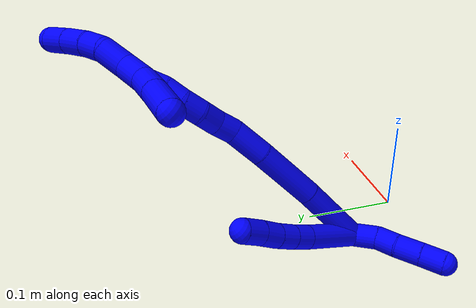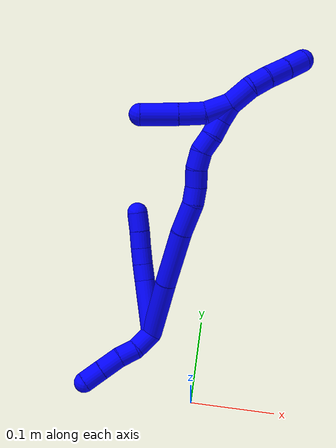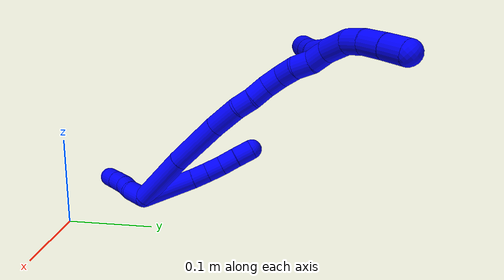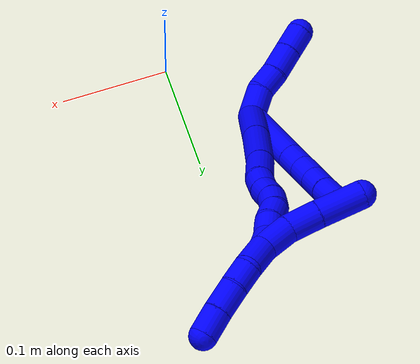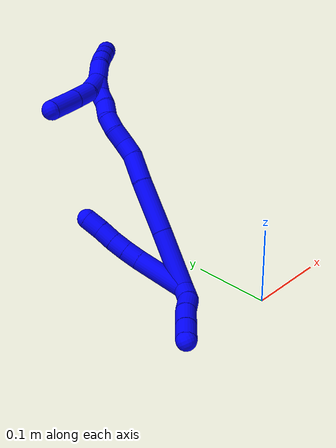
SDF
<sdf version="1.7">
 <world name="default">
  <model name="1">
   <static>0</static>
   <link name="1">
    <collision name="collision-cylinder-e_1_2_8">
     <pose>-0.018142 0.006258 0.026969 -0.228025 -0.580071 0.068324</pose>
     <geometry><cylinder><radius>0.0125</radius><length>0.0662</length></cylinder></geometry>
     <surface>
      <friction><ode><mu>1.16</mu><mu2>1.16</mu2><slip1>0</slip1><slip2>0</slip2></ode></friction>
      <contact><ode><kp>1e+06</kp><kd>1</kd><max_vel>0</max_vel><min_depth>0.001</min_depth></ode></contact>
     </surface>
    </collision>
    <visual name="visual-cylinder-e_1_2_8">
     <pose>-0.018142 0.006258 0.026969 -0.228025 -0.580071 0.068324</pose>
     <geometry><cylinder><radius>0.0125</radius><length>0.0662</length></cylinder></geometry>
     <material><ambient>0 0 1 1</ambient></material>
    </visual>
    <collision name="collision-cylinder-e_2_8_9">
     <pose>-0.041552 0.013997 0.062489 -0.171379 -0.545657 0.048061</pose>
     <geometry><cylinder><radius>0.0125</radius><length>0.020306</length></cylinder></geometry>
     <surface>
      <friction><ode><mu>1.16</mu><mu2>1.16</mu2><slip1>0</slip1><slip2>0</slip2></ode></friction>
      <contact><ode><kp>1e+06</kp><kd>1</kd><max_vel>0</max_vel><min_depth>0.001</min_depth></ode></contact>
     </surface>
    </collision>
    <visual name="visual-cylinder-e_2_8_9">
     <pose>-0.041552 0.013997 0.062489 -0.171379 -0.545657 0.048061</pose>
     <geometry><cylinder><radius>0.0125</radius><length>0.020306</length></cylinder></geometry>
     <material><ambient>0 0 1 1</ambient></material>
    </visual>
    <collision name="collision-cylinder-e_3_9_10">
     <pose>-0.051677 0.01679 0.079745 -0.14973 -0.504053 0.038623</pose>
     <geometry><cylinder><radius>0.0125</radius><length>0.020106</length></cylinder></geometry>
     <surface>
      <friction><ode><mu>1.16</mu><mu2>1.16</mu2><slip1>0</slip1><slip2>0</slip2></ode></friction>
      <contact><ode><kp>1e+06</kp><kd>1</kd><max_vel>0</max_vel><min_depth>0.001</min_depth></ode></contact>
     </surface>
    </collision>
    <visual name="visual-cylinder-e_3_9_10">
     <pose>-0.051677 0.01679 0.079745 -0.14973 -0.504053 0.038623</pose>
     <geometry><cylinder><radius>0.0125</radius><length>0.020106</length></cylinder></geometry>
     <material><ambient>0 0 1 1</ambient></material>
    </visual>
    <collision name="collision-cylinder-e_4_10_11">
     <pose>-0.060984 0.019035 0.097905 -0.098196 -0.438135 0.021879</pose>
     <geometry><cylinder><radius>0.0125</radius><length>0.020985</length></cylinder></geometry>
     <surface>
      <friction><ode><mu>1.16</mu><mu2>1.16</mu2><slip1>0</slip1><slip2>0</slip2></ode></friction>
      <contact><ode><kp>1e+06</kp><kd>1</kd><max_vel>0</max_vel><min_depth>0.001</min_depth></ode></contact>
     </surface>
    </collision>
    <visual name="visual-cylinder-e_4_10_11">
     <pose>-0.060984 0.019035 0.097905 -0.098196 -0.438135 0.021879</pose>
     <geometry><cylinder><radius>0.0125</radius><length>0.020985</length></cylinder></geometry>
     <material><ambient>0 0 1 1</ambient></material>
    </visual>
    <collision name="collision-cylinder-e_5_11_6">
     <pose>-0.070785 0.020998 0.117148 -0.10502 -0.497927 0.026723</pose>
     <geometry><cylinder><radius>0.0125</radius><length>0.022403</length></cylinder></geometry>
     <surface>
      <friction><ode><mu>1.16</mu><mu2>1.16</mu2><slip1>0</slip1><slip2>0</slip2></ode></friction>
      <contact><ode><kp>1e+06</kp><kd>1</kd><max_vel>0</max_vel><min_depth>0.001</min_depth></ode></contact>
     </surface>
    </collision>
    <visual name="visual-cylinder-e_5_11_6">
     <pose>-0.070785 0.020998 0.117148 -0.10502 -0.497927 0.026723</pose>
     <geometry><cylinder><radius>0.0125</radius><length>0.022403</length></cylinder></geometry>
     <material><ambient>0 0 1 1</ambient></material>
    </visual>
    <collision name="collision-cylinder-e_1_2_12">
     <pose>-0.00156 -0.011194 -0.007921 2.18661 -0.113242 -0.218222</pose>
     <geometry><cylinder><radius>0.0125</radius><length>0.027604</length></cylinder></geometry>
     <surface>
      <friction><ode><mu>1.16</mu><mu2>1.16</mu2><slip1>0</slip1><slip2>0</slip2></ode></friction>
      <contact><ode><kp>1e+06</kp><kd>1</kd><max_vel>0</max_vel><min_depth>0.001</min_depth></ode></contact>
     </surface>
    </collision>
    <visual name="visual-cylinder-e_1_2_12">
     <pose>-0.00156 -0.011194 -0.007921 2.18661 -0.113242 -0.218222</pose>
     <geometry><cylinder><radius>0.0125</radius><length>0.027604</length></cylinder></geometry>
     <material><ambient>0 0 1 1</ambient></material>
    </visual>
    <collision name="collision-cylinder-e_2_12_13">
     <pose>-0.007916 -0.030567 -0.021464 2.17294 -0.450243 -0.821072</pose>
     <geometry><cylinder><radius>0.0125</radius><length>0.022045</length></cylinder></geometry>
     <surface>
      <friction><ode><mu>1.16</mu><mu2>1.16</mu2><slip1>0</slip1><slip2>0</slip2></ode></friction>
      <contact><ode><kp>1e+06</kp><kd>1</kd><max_vel>0</max_vel><min_depth>0.001</min_depth></ode></contact>
     </surface>
    </collision>
    <visual name="visual-cylinder-e_2_12_13">
     <pose>-0.007916 -0.030567 -0.021464 2.17294 -0.450243 -0.821072</pose>
     <geometry><cylinder><radius>0.0125</radius><length>0.022045</length></cylinder></geometry>
     <material><ambient>0 0 1 1</ambient></material>
    </visual>
    <collision name="collision-cylinder-e_3_13_14">
     <pose>-0.01693 -0.048303 -0.034982 2.26137 -0.327861 -0.675594</pose>
     <geometry><cylinder><radius>0.0125</radius><length>0.02619</length></cylinder></geometry>
     <surface>
      <friction><ode><mu>1.16</mu><mu2>1.16</mu2><slip1>0</slip1><slip2>0</slip2></ode></friction>
      <contact><ode><kp>1e+06</kp><kd>1</kd><max_vel>0</max_vel><min_depth>0.001</min_depth></ode></contact>
     </surface>
    </collision>
    <visual name="visual-cylinder-e_3_13_14">
     <pose>-0.01693 -0.048303 -0.034982 2.26137 -0.327861 -0.675594</pose>
     <geometry><cylinder><radius>0.0125</radius><length>0.02619</length></cylinder></geometry>
     <material><ambient>0 0 1 1</ambient></material>
    </visual>
    <collision name="collision-cylinder-e_4_14_5">
     <pose>-0.025086 -0.066499 -0.050347 2.28365 -0.332165 -0.702585</pose>
     <geometry><cylinder><radius>0.0125</radius><length>0.024161</length></cylinder></geometry>
     <surface>
      <friction><ode><mu>1.16</mu><mu2>1.16</mu2><slip1>0</slip1><slip2>0</slip2></ode></friction>
      <contact><ode><kp>1e+06</kp><kd>1</kd><max_vel>0</max_vel><min_depth>0.001</min_depth></ode></contact>
     </surface>
    </collision>
    <visual name="visual-cylinder-e_4_14_5">
     <pose>-0.025086 -0.066499 -0.050347 2.28365 -0.332165 -0.702585</pose>
     <geometry><cylinder><radius>0.0125</radius><length>0.024161</length></cylinder></geometry>
     <material><ambient>0 0 1 1</ambient></material>
    </visual>
    <collision name="collision-cylinder-e_1_2_15">
     <pose>0.000826 -0.000609 0.037196 0.016366 0.022189 0.000182</pose>
     <geometry><cylinder><radius>0.0125</radius><length>0.074421</length></cylinder></geometry>
     <surface>
      <friction><ode><mu>1.16</mu><mu2>1.16</mu2><slip1>0</slip1><slip2>0</slip2></ode></friction>
      <contact><ode><kp>1e+06</kp><kd>1</kd><max_vel>0</max_vel><min_depth>0.001</min_depth></ode></contact>
     </surface>
    </collision>
    <visual name="visual-cylinder-e_1_2_15">
     <pose>0.000826 -0.000609 0.037196 0.016366 0.022189 0.000182</pose>
     <geometry><cylinder><radius>0.0125</radius><length>0.074421</length></cylinder></geometry>
     <material><ambient>0 0 1 1</ambient></material>
    </visual>
    <collision name="collision-cylinder-e_2_15_16">
     <pose>0.002172 0.000132 0.108194 -0.039903 0.015393 -0.000307</pose>
     <geometry><cylinder><radius>0.0125</radius><length>0.067665</length></cylinder></geometry>
     <surface>
      <friction><ode><mu>1.16</mu><mu2>1.16</mu2><slip1>0</slip1><slip2>0</slip2></ode></friction>
      <contact><ode><kp>1e+06</kp><kd>1</kd><max_vel>0</max_vel><min_depth>0.001</min_depth></ode></contact>
     </surface>
    </collision>
    <visual name="visual-cylinder-e_2_15_16">
     <pose>0.002172 0.000132 0.108194 -0.039903 0.015393 -0.000307</pose>
     <geometry><cylinder><radius>0.0125</radius><length>0.067665</length></cylinder></geometry>
     <material><ambient>0 0 1 1</ambient></material>
    </visual>
    <collision name="collision-cylinder-e_3_16_17">
     <pose>0.003862 0.003722 0.160255 -0.122072 0.063483 -0.003881</pose>
     <geometry><cylinder><radius>0.0125</radius><length>0.036868</length></cylinder></geometry>
     <surface>
      <friction><ode><mu>1.16</mu><mu2>1.16</mu2><slip1>0</slip1><slip2>0</slip2></ode></friction>
      <contact><ode><kp>1e+06</kp><kd>1</kd><max_vel>0</max_vel><min_depth>0.001</min_depth></ode></contact>
     </surface>
    </collision>
    <visual name="visual-cylinder-e_3_16_17">
     <pose>0.003862 0.003722 0.160255 -0.122072 0.063483 -0.003881</pose>
     <geometry><cylinder><radius>0.0125</radius><length>0.036868</length></cylinder></geometry>
     <material><ambient>0 0 1 1</ambient></material>
    </visual>
    <collision name="collision-cylinder-e_4_17_18">
     <pose>0.003189 0.00738 0.188351 -0.143176 -0.183322 0.013183</pose>
     <geometry><cylinder><radius>0.0125</radius><length>0.020213</length></cylinder></geometry>
     <surface>
      <friction><ode><mu>1.16</mu><mu2>1.16</mu2><slip1>0</slip1><slip2>0</slip2></ode></friction>
      <contact><ode><kp>1e+06</kp><kd>1</kd><max_vel>0</max_vel><min_depth>0.001</min_depth></ode></contact>
     </surface>
    </collision>
    <visual name="visual-cylinder-e_4_17_18">
     <pose>0.003189 0.00738 0.188351 -0.143176 -0.183322 0.013183</pose>
     <geometry><cylinder><radius>0.0125</radius><length>0.020213</length></cylinder></geometry>
     <material><ambient>0 0 1 1</ambient></material>
    </visual>
    <collision name="collision-cylinder-e_5_18_19">
     <pose>-0.001168 0.008535 0.208077 0.026537 -0.24891 -0.00332</pose>
     <geometry><cylinder><radius>0.0125</radius><length>0.020419</length></cylinder></geometry>
     <surface>
      <friction><ode><mu>1.16</mu><mu2>1.16</mu2><slip1>0</slip1><slip2>0</slip2></ode></friction>
      <contact><ode><kp>1e+06</kp><kd>1</kd><max_vel>0</max_vel><min_depth>0.001</min_depth></ode></contact>
     </surface>
    </collision>
    <visual name="visual-cylinder-e_5_18_19">
     <pose>-0.001168 0.008535 0.208077 0.026537 -0.24891 -0.00332</pose>
     <geometry><cylinder><radius>0.0125</radius><length>0.020419</length></cylinder></geometry>
     <material><ambient>0 0 1 1</ambient></material>
    </visual>
    <collision name="collision-cylinder-e_6_19_20">
     <pose>-0.004482 0.00976 0.227987 -0.147457 -0.078727 0.005818</pose>
     <geometry><cylinder><radius>0.0125</radius><length>0.02032</length></cylinder></geometry>
     <surface>
      <friction><ode><mu>1.16</mu><mu2>1.16</mu2><slip1>0</slip1><slip2>0</slip2></ode></friction>
      <contact><ode><kp>1e+06</kp><kd>1</kd><max_vel>0</max_vel><min_depth>0.001</min_depth></ode></contact>
     </surface>
    </collision>
    <visual name="visual-cylinder-e_6_19_20">
     <pose>-0.004482 0.00976 0.227987 -0.147457 -0.078727 0.005818</pose>
     <geometry><cylinder><radius>0.0125</radius><length>0.02032</length></cylinder></geometry>
     <material><ambient>0 0 1 1</ambient></material>
    </visual>
    <collision name="collision-cylinder-e_7_20_21">
     <pose>-0.003102 0.014414 0.247269 -0.329263 0.219065 -0.036537</pose>
     <geometry><cylinder><radius>0.0125</radius><length>0.020059</length></cylinder></geometry>
     <surface>
      <friction><ode><mu>1.16</mu><mu2>1.16</mu2><slip1>0</slip1><slip2>0</slip2></ode></friction>
      <contact><ode><kp>1e+06</kp><kd>1</kd><max_vel>0</max_vel><min_depth>0.001</min_depth></ode></contact>
     </surface>
    </collision>
    <visual name="visual-cylinder-e_7_20_21">
     <pose>-0.003102 0.014414 0.247269 -0.329263 0.219065 -0.036537</pose>
     <geometry><cylinder><radius>0.0125</radius><length>0.020059</length></cylinder></geometry>
     <material><ambient>0 0 1 1</ambient></material>
    </visual>
    <collision name="collision-cylinder-e_8_21_22">
     <pose>-0.000806 0.021914 0.265561 -0.447644 0.011615 -0.002644</pose>
     <geometry><cylinder><radius>0.0125</radius><length>0.020029</length></cylinder></geometry>
     <surface>
      <friction><ode><mu>1.16</mu><mu2>1.16</mu2><slip1>0</slip1><slip2>0</slip2></ode></friction>
      <contact><ode><kp>1e+06</kp><kd>1</kd><max_vel>0</max_vel><min_depth>0.001</min_depth></ode></contact>
     </surface>
    </collision>
    <visual name="visual-cylinder-e_8_21_22">
     <pose>-0.000806 0.021914 0.265561 -0.447644 0.011615 -0.002644</pose>
     <geometry><cylinder><radius>0.0125</radius><length>0.020029</length></cylinder></geometry>
     <material><ambient>0 0 1 1</ambient></material>
    </visual>
    <collision name="collision-cylinder-e_9_22_1">
     <pose>0.001317 0.028485 0.284129 -0.230239 0.201949 -0.02343</pose>
     <geometry><cylinder><radius>0.0125</radius><length>0.020007</length></cylinder></geometry>
     <surface>
      <friction><ode><mu>1.16</mu><mu2>1.16</mu2><slip1>0</slip1><slip2>0</slip2></ode></friction>
      <contact><ode><kp>1e+06</kp><kd>1</kd><max_vel>0</max_vel><min_depth>0.001</min_depth></ode></contact>
     </surface>
    </collision>
    <visual name="visual-cylinder-e_9_22_1">
     <pose>0.001317 0.028485 0.284129 -0.230239 0.201949 -0.02343</pose>
     <geometry><cylinder><radius>0.0125</radius><length>0.020007</length></cylinder></geometry>
     <material><ambient>0 0 1 1</ambient></material>
    </visual>
    <collision name="collision-cylinder-e_1_1_23">
     <pose>-0.005497 0.022224 0.286135 2.2963 -0.660336 -1.30229</pose>
     <geometry><cylinder><radius>0.0125</radius><length>0.02876</length></cylinder></geometry>
     <surface>
      <friction><ode><mu>1.16</mu><mu2>1.16</mu2><slip1>0</slip1><slip2>0</slip2></ode></friction>
      <contact><ode><kp>1e+06</kp><kd>1</kd><max_vel>0</max_vel><min_depth>0.001</min_depth></ode></contact>
     </surface>
    </collision>
    <visual name="visual-cylinder-e_1_1_23">
     <pose>-0.005497 0.022224 0.286135 2.2963 -0.660336 -1.30229</pose>
     <geometry><cylinder><radius>0.0125</radius><length>0.02876</length></cylinder></geometry>
     <material><ambient>0 0 1 1</ambient></material>
    </visual>
    <collision name="collision-cylinder-e_2_23_24">
     <pose>-0.025481 0.005282 0.274555 2.0175 -0.872844 -1.27488</pose>
     <geometry><cylinder><radius>0.0125</radius><length>0.029141</length></cylinder></geometry>
     <surface>
      <friction><ode><mu>1.16</mu><mu2>1.16</mu2><slip1>0</slip1><slip2>0</slip2></ode></friction>
      <contact><ode><kp>1e+06</kp><kd>1</kd><max_vel>0</max_vel><min_depth>0.001</min_depth></ode></contact>
     </surface>
    </collision>
    <visual name="visual-cylinder-e_2_23_24">
     <pose>-0.025481 0.005282 0.274555 2.0175 -0.872844 -1.27488</pose>
     <geometry><cylinder><radius>0.0125</radius><length>0.029141</length></cylinder></geometry>
     <material><ambient>0 0 1 1</ambient></material>
    </visual>
    <collision name="collision-cylinder-e_3_24_4">
     <pose>-0.053212 -0.015073 0.265338 1.98043 -0.906057 -1.27681</pose>
     <geometry><cylinder><radius>0.0125</radius><length>0.042099</length></cylinder></geometry>
     <surface>
      <friction><ode><mu>1.16</mu><mu2>1.16</mu2><slip1>0</slip1><slip2>0</slip2></ode></friction>
      <contact><ode><kp>1e+06</kp><kd>1</kd><max_vel>0</max_vel><min_depth>0.001</min_depth></ode></contact>
     </surface>
    </collision>
    <visual name="visual-cylinder-e_3_24_4">
     <pose>-0.053212 -0.015073 0.265338 1.98043 -0.906057 -1.27681</pose>
     <geometry><cylinder><radius>0.0125</radius><length>0.042099</length></cylinder></geometry>
     <material><ambient>0 0 1 1</ambient></material>
    </visual>
    <collision name="collision-cylinder-e_1_1_25">
     <pose>0.009212 0.037133 0.305179 -0.508322 0.420344 -0.11072</pose>
     <geometry><cylinder><radius>0.0125</radius><length>0.028858</length></cylinder></geometry>
     <surface>
      <friction><ode><mu>1.16</mu><mu2>1.16</mu2><slip1>0</slip1><slip2>0</slip2></ode></friction>
      <contact><ode><kp>1e+06</kp><kd>1</kd><max_vel>0</max_vel><min_depth>0.001</min_depth></ode></contact>
     </surface>
    </collision>
    <visual name="visual-cylinder-e_1_1_25">
     <pose>0.009212 0.037133 0.305179 -0.508322 0.420344 -0.11072</pose>
     <geometry><cylinder><radius>0.0125</radius><length>0.028858</length></cylinder></geometry>
     <material><ambient>0 0 1 1</ambient></material>
    </visual>
    <collision name="collision-cylinder-e_2_25_26">
     <pose>0.01921 0.051167 0.322945 -0.883254 0.394838 -0.18857</pose>
     <geometry><cylinder><radius>0.0125</radius><length>0.02137</length></cylinder></geometry>
     <surface>
      <friction><ode><mu>1.16</mu><mu2>1.16</mu2><slip1>0</slip1><slip2>0</slip2></ode></friction>
      <contact><ode><kp>1e+06</kp><kd>1</kd><max_vel>0</max_vel><min_depth>0.001</min_depth></ode></contact>
     </surface>
    </collision>
    <visual name="visual-cylinder-e_2_25_26">
     <pose>0.01921 0.051167 0.322945 -0.883254 0.394838 -0.18857</pose>
     <geometry><cylinder><radius>0.0125</radius><length>0.02137</length></cylinder></geometry>
     <material><ambient>0 0 1 1</ambient></material>
    </visual>
    <collision name="collision-cylinder-e_3_26_27">
     <pose>0.027848 0.069025 0.335266 -1.03616 0.363694 -0.208864</pose>
     <geometry><cylinder><radius>0.0125</radius><length>0.025457</length></cylinder></geometry>
     <surface>
      <friction><ode><mu>1.16</mu><mu2>1.16</mu2><slip1>0</slip1><slip2>0</slip2></ode></friction>
      <contact><ode><kp>1e+06</kp><kd>1</kd><max_vel>0</max_vel><min_depth>0.001</min_depth></ode></contact>
     </surface>
    </collision>
    <visual name="visual-cylinder-e_3_26_27">
     <pose>0.027848 0.069025 0.335266 -1.03616 0.363694 -0.208864</pose>
     <geometry><cylinder><radius>0.0125</radius><length>0.025457</length></cylinder></geometry>
     <material><ambient>0 0 1 1</ambient></material>
    </visual>
    <collision name="collision-cylinder-e_4_27_3">
     <pose>0.03612 0.089344 0.346994 -1.05883 0.313077 -0.184181</pose>
     <geometry><cylinder><radius>0.0125</radius><length>0.024315</length></cylinder></geometry>
     <surface>
      <friction><ode><mu>1.16</mu><mu2>1.16</mu2><slip1>0</slip1><slip2>0</slip2></ode></friction>
      <contact><ode><kp>1e+06</kp><kd>1</kd><max_vel>0</max_vel><min_depth>0.001</min_depth></ode></contact>
     </surface>
    </collision>
    <visual name="visual-cylinder-e_4_27_3">
     <pose>0.03612 0.089344 0.346994 -1.05883 0.313077 -0.184181</pose>
     <geometry><cylinder><radius>0.0125</radius><length>0.024315</length></cylinder></geometry>
     <material><ambient>0 0 1 1</ambient></material>
    </visual>
    <collision name="collision-sphere-3">
     <pose>0.039864 0.099427 0.35266 0 -0 0</pose>
     <geometry><sphere><radius>0.0125</radius></sphere></geometry>
     <surface>
      <friction><ode><mu>1.16</mu><mu2>1.16</mu2><slip1>0</slip1><slip2>0</slip2></ode></friction>
      <contact><ode><kp>1e+06</kp><kd>1</kd><max_vel>0</max_vel><min_depth>0.001</min_depth></ode></contact>
     </surface>
    </collision>
    <visual name="visual-sphere-3">
     <pose>0.039864 0.099427 0.35266 0 -0 0</pose>
     <geometry><sphere><radius>0.0125</radius></sphere></geometry>
     <material><ambient>0 0 1 1</ambient></material>
    </visual>
    <collision name="collision-sphere-27">
     <pose>0.032376 0.07926 0.341327 0 -0 0</pose>
     <geometry><sphere><radius>0.0125</radius></sphere></geometry>
     <surface>
      <friction><ode><mu>1.16</mu><mu2>1.16</mu2><slip1>0</slip1><slip2>0</slip2></ode></friction>
      <contact><ode><kp>1e+06</kp><kd>1</kd><max_vel>0</max_vel><min_depth>0.001</min_depth></ode></contact>
     </surface>
    </collision>
    <visual name="visual-sphere-27">
     <pose>0.032376 0.07926 0.341327 0 -0 0</pose>
     <geometry><sphere><radius>0.0125</radius></sphere></geometry>
     <material><ambient>0 0 1 1</ambient></material>
    </visual>
    <collision name="collision-sphere-26">
     <pose>0.02332 0.058789 0.329205 0 -0 0</pose>
     <geometry><sphere><radius>0.0125</radius></sphere></geometry>
     <surface>
      <friction><ode><mu>1.16</mu><mu2>1.16</mu2><slip1>0</slip1><slip2>0</slip2></ode></friction>
      <contact><ode><kp>1e+06</kp><kd>1</kd><max_vel>0</max_vel><min_depth>0.001</min_depth></ode></contact>
     </surface>
    </collision>
    <visual name="visual-sphere-26">
     <pose>0.02332 0.058789 0.329205 0 -0 0</pose>
     <geometry><sphere><radius>0.0125</radius></sphere></geometry>
     <material><ambient>0 0 1 1</ambient></material>
    </visual>
    <collision name="collision-sphere-25">
     <pose>0.0151 0.043544 0.316686 0 -0 0</pose>
     <geometry><sphere><radius>0.0125</radius></sphere></geometry>
     <surface>
      <friction><ode><mu>1.16</mu><mu2>1.16</mu2><slip1>0</slip1><slip2>0</slip2></ode></friction>
      <contact><ode><kp>1e+06</kp><kd>1</kd><max_vel>0</max_vel><min_depth>0.001</min_depth></ode></contact>
     </surface>
    </collision>
    <visual name="visual-sphere-25">
     <pose>0.0151 0.043544 0.316686 0 -0 0</pose>
     <geometry><sphere><radius>0.0125</radius></sphere></geometry>
     <material><ambient>0 0 1 1</ambient></material>
    </visual>
    <collision name="collision-sphere-4">
     <pose>-0.069779 -0.026983 0.260167 0 -0 0</pose>
     <geometry><sphere><radius>0.0125</radius></sphere></geometry>
     <surface>
      <friction><ode><mu>1.16</mu><mu2>1.16</mu2><slip1>0</slip1><slip2>0</slip2></ode></friction>
      <contact><ode><kp>1e+06</kp><kd>1</kd><max_vel>0</max_vel><min_depth>0.001</min_depth></ode></contact>
     </surface>
    </collision>
    <visual name="visual-sphere-4">
     <pose>-0.069779 -0.026983 0.260167 0 -0 0</pose>
     <geometry><sphere><radius>0.0125</radius></sphere></geometry>
     <material><ambient>0 0 1 1</ambient></material>
    </visual>
    <collision name="collision-sphere-24">
     <pose>-0.036644 -0.003162 0.270509 0 -0 0</pose>
     <geometry><sphere><radius>0.0125</radius></sphere></geometry>
     <surface>
      <friction><ode><mu>1.16</mu><mu2>1.16</mu2><slip1>0</slip1><slip2>0</slip2></ode></friction>
      <contact><ode><kp>1e+06</kp><kd>1</kd><max_vel>0</max_vel><min_depth>0.001</min_depth></ode></contact>
     </surface>
    </collision>
    <visual name="visual-sphere-24">
     <pose>-0.036644 -0.003162 0.270509 0 -0 0</pose>
     <geometry><sphere><radius>0.0125</radius></sphere></geometry>
     <material><ambient>0 0 1 1</ambient></material>
    </visual>
    <collision name="collision-sphere-23">
     <pose>-0.014317 0.013727 0.2786 0 -0 0</pose>
     <geometry><sphere><radius>0.0125</radius></sphere></geometry>
     <surface>
      <friction><ode><mu>1.16</mu><mu2>1.16</mu2><slip1>0</slip1><slip2>0</slip2></ode></friction>
      <contact><ode><kp>1e+06</kp><kd>1</kd><max_vel>0</max_vel><min_depth>0.001</min_depth></ode></contact>
     </surface>
    </collision>
    <visual name="visual-sphere-23">
     <pose>-0.014317 0.013727 0.2786 0 -0 0</pose>
     <geometry><sphere><radius>0.0125</radius></sphere></geometry>
     <material><ambient>0 0 1 1</ambient></material>
    </visual>
    <collision name="collision-sphere-1">
     <pose>0.003324 0.030721 0.293671 0 -0 0</pose>
     <geometry><sphere><radius>0.0125</radius></sphere></geometry>
     <surface>
      <friction><ode><mu>1.16</mu><mu2>1.16</mu2><slip1>0</slip1><slip2>0</slip2></ode></friction>
      <contact><ode><kp>1e+06</kp><kd>1</kd><max_vel>0</max_vel><min_depth>0.001</min_depth></ode></contact>
     </surface>
    </collision>
    <visual name="visual-sphere-1">
     <pose>0.003324 0.030721 0.293671 0 -0 0</pose>
     <geometry><sphere><radius>0.0125</radius></sphere></geometry>
     <material><ambient>0 0 1 1</ambient></material>
    </visual>
    <collision name="collision-sphere-22">
     <pose>-0.000689 0.026248 0.274588 0 -0 0</pose>
     <geometry><sphere><radius>0.0125</radius></sphere></geometry>
     <surface>
      <friction><ode><mu>1.16</mu><mu2>1.16</mu2><slip1>0</slip1><slip2>0</slip2></ode></friction>
      <contact><ode><kp>1e+06</kp><kd>1</kd><max_vel>0</max_vel><min_depth>0.001</min_depth></ode></contact>
     </surface>
    </collision>
    <visual name="visual-sphere-22">
     <pose>-0.000689 0.026248 0.274588 0 -0 0</pose>
     <geometry><sphere><radius>0.0125</radius></sphere></geometry>
     <material><ambient>0 0 1 1</ambient></material>
    </visual>
    <collision name="collision-sphere-21">
     <pose>-0.000922 0.01758 0.256534 0 -0 0</pose>
     <geometry><sphere><radius>0.0125</radius></sphere></geometry>
     <surface>
      <friction><ode><mu>1.16</mu><mu2>1.16</mu2><slip1>0</slip1><slip2>0</slip2></ode></friction>
      <contact><ode><kp>1e+06</kp><kd>1</kd><max_vel>0</max_vel><min_depth>0.001</min_depth></ode></contact>
     </surface>
    </collision>
    <visual name="visual-sphere-21">
     <pose>-0.000922 0.01758 0.256534 0 -0 0</pose>
     <geometry><sphere><radius>0.0125</radius></sphere></geometry>
     <material><ambient>0 0 1 1</ambient></material>
    </visual>
    <collision name="collision-sphere-6">
     <pose>-0.076135 0.02203 0.126935 0 -0 0</pose>
     <geometry><sphere><radius>0.0125</radius></sphere></geometry>
     <surface>
      <friction><ode><mu>1.16</mu><mu2>1.16</mu2><slip1>0</slip1><slip2>0</slip2></ode></friction>
      <contact><ode><kp>1e+06</kp><kd>1</kd><max_vel>0</max_vel><min_depth>0.001</min_depth></ode></contact>
     </surface>
    </collision>
    <visual name="visual-sphere-6">
     <pose>-0.076135 0.02203 0.126935 0 -0 0</pose>
     <geometry><sphere><radius>0.0125</radius></sphere></geometry>
     <material><ambient>0 0 1 1</ambient></material>
    </visual>
    <collision name="collision-sphere-11">
     <pose>-0.065435 0.019966 0.107361 0 -0 0</pose>
     <geometry><sphere><radius>0.0125</radius></sphere></geometry>
     <surface>
      <friction><ode><mu>1.16</mu><mu2>1.16</mu2><slip1>0</slip1><slip2>0</slip2></ode></friction>
      <contact><ode><kp>1e+06</kp><kd>1</kd><max_vel>0</max_vel><min_depth>0.001</min_depth></ode></contact>
     </surface>
    </collision>
    <visual name="visual-sphere-11">
     <pose>-0.065435 0.019966 0.107361 0 -0 0</pose>
     <geometry><sphere><radius>0.0125</radius></sphere></geometry>
     <material><ambient>0 0 1 1</ambient></material>
    </visual>
    <collision name="collision-sphere-10">
     <pose>-0.056532 0.018103 0.088449 0 -0 0</pose>
     <geometry><sphere><radius>0.0125</radius></sphere></geometry>
     <surface>
      <friction><ode><mu>1.16</mu><mu2>1.16</mu2><slip1>0</slip1><slip2>0</slip2></ode></friction>
      <contact><ode><kp>1e+06</kp><kd>1</kd><max_vel>0</max_vel><min_depth>0.001</min_depth></ode></contact>
     </surface>
    </collision>
    <visual name="visual-sphere-10">
     <pose>-0.056532 0.018103 0.088449 0 -0 0</pose>
     <geometry><sphere><radius>0.0125</radius></sphere></geometry>
     <material><ambient>0 0 1 1</ambient></material>
    </visual>
    <collision name="collision-sphere-9">
     <pose>-0.046821 0.015477 0.07104 0 -0 0</pose>
     <geometry><sphere><radius>0.0125</radius></sphere></geometry>
     <surface>
      <friction><ode><mu>1.16</mu><mu2>1.16</mu2><slip1>0</slip1><slip2>0</slip2></ode></friction>
      <contact><ode><kp>1e+06</kp><kd>1</kd><max_vel>0</max_vel><min_depth>0.001</min_depth></ode></contact>
     </surface>
    </collision>
    <visual name="visual-sphere-9">
     <pose>-0.046821 0.015477 0.07104 0 -0 0</pose>
     <geometry><sphere><radius>0.0125</radius></sphere></geometry>
     <material><ambient>0 0 1 1</ambient></material>
    </visual>
    <collision name="collision-sphere-2">
     <geometry><sphere><radius>0.0125</radius></sphere></geometry>
     <surface>
      <friction><ode><mu>1.16</mu><mu2>1.16</mu2><slip1>0</slip1><slip2>0</slip2></ode></friction>
      <contact><ode><kp>1e+06</kp><kd>1</kd><max_vel>0</max_vel><min_depth>0.001</min_depth></ode></contact>
     </surface>
    </collision>
    <visual name="visual-sphere-2">
     <geometry><sphere><radius>0.0125</radius></sphere></geometry>
     <material><ambient>0 0 1 1</ambient></material>
    </visual>
    <collision name="collision-sphere-19">
     <pose>-0.003683 0.008272 0.217969 0 -0 0</pose>
     <geometry><sphere><radius>0.0125</radius></sphere></geometry>
     <surface>
      <friction><ode><mu>1.16</mu><mu2>1.16</mu2><slip1>0</slip1><slip2>0</slip2></ode></friction>
      <contact><ode><kp>1e+06</kp><kd>1</kd><max_vel>0</max_vel><min_depth>0.001</min_depth></ode></contact>
     </surface>
    </collision>
    <visual name="visual-sphere-19">
     <pose>-0.003683 0.008272 0.217969 0 -0 0</pose>
     <geometry><sphere><radius>0.0125</radius></sphere></geometry>
     <material><ambient>0 0 1 1</ambient></material>
    </visual>
    <collision name="collision-sphere-8">
     <pose>-0.036283 0.012517 0.053938 0 -0 0</pose>
     <geometry><sphere><radius>0.0125</radius></sphere></geometry>
     <surface>
      <friction><ode><mu>1.16</mu><mu2>1.16</mu2><slip1>0</slip1><slip2>0</slip2></ode></friction>
      <contact><ode><kp>1e+06</kp><kd>1</kd><max_vel>0</max_vel><min_depth>0.001</min_depth></ode></contact>
     </surface>
    </collision>
    <visual name="visual-sphere-8">
     <pose>-0.036283 0.012517 0.053938 0 -0 0</pose>
     <geometry><sphere><radius>0.0125</radius></sphere></geometry>
     <material><ambient>0 0 1 1</ambient></material>
    </visual>
    <collision name="collision-sphere-12">
     <pose>-0.003119 -0.022389 -0.015843 0 -0 0</pose>
     <geometry><sphere><radius>0.0125</radius></sphere></geometry>
     <surface>
      <friction><ode><mu>1.16</mu><mu2>1.16</mu2><slip1>0</slip1><slip2>0</slip2></ode></friction>
      <contact><ode><kp>1e+06</kp><kd>1</kd><max_vel>0</max_vel><min_depth>0.001</min_depth></ode></contact>
     </surface>
    </collision>
    <visual name="visual-sphere-12">
     <pose>-0.003119 -0.022389 -0.015843 0 -0 0</pose>
     <geometry><sphere><radius>0.0125</radius></sphere></geometry>
     <material><ambient>0 0 1 1</ambient></material>
    </visual>
    <collision name="collision-sphere-13">
     <pose>-0.012713 -0.038746 -0.027085 0 -0 0</pose>
     <geometry><sphere><radius>0.0125</radius></sphere></geometry>
     <surface>
      <friction><ode><mu>1.16</mu><mu2>1.16</mu2><slip1>0</slip1><slip2>0</slip2></ode></friction>
      <contact><ode><kp>1e+06</kp><kd>1</kd><max_vel>0</max_vel><min_depth>0.001</min_depth></ode></contact>
     </surface>
    </collision>
    <visual name="visual-sphere-13">
     <pose>-0.012713 -0.038746 -0.027085 0 -0 0</pose>
     <geometry><sphere><radius>0.0125</radius></sphere></geometry>
     <material><ambient>0 0 1 1</ambient></material>
    </visual>
    <collision name="collision-sphere-14">
     <pose>-0.021147 -0.05786 -0.042879 0 -0 0</pose>
     <geometry><sphere><radius>0.0125</radius></sphere></geometry>
     <surface>
      <friction><ode><mu>1.16</mu><mu2>1.16</mu2><slip1>0</slip1><slip2>0</slip2></ode></friction>
      <contact><ode><kp>1e+06</kp><kd>1</kd><max_vel>0</max_vel><min_depth>0.001</min_depth></ode></contact>
     </surface>
    </collision>
    <visual name="visual-sphere-14">
     <pose>-0.021147 -0.05786 -0.042879 0 -0 0</pose>
     <geometry><sphere><radius>0.0125</radius></sphere></geometry>
     <material><ambient>0 0 1 1</ambient></material>
    </visual>
    <collision name="collision-sphere-5">
     <pose>-0.029025 -0.075139 -0.057816 0 -0 0</pose>
     <geometry><sphere><radius>0.0125</radius></sphere></geometry>
     <surface>
      <friction><ode><mu>1.16</mu><mu2>1.16</mu2><slip1>0</slip1><slip2>0</slip2></ode></friction>
      <contact><ode><kp>1e+06</kp><kd>1</kd><max_vel>0</max_vel><min_depth>0.001</min_depth></ode></contact>
     </surface>
    </collision>
    <visual name="visual-sphere-5">
     <pose>-0.029025 -0.075139 -0.057816 0 -0 0</pose>
     <geometry><sphere><radius>0.0125</radius></sphere></geometry>
     <material><ambient>0 0 1 1</ambient></material>
    </visual>
    <collision name="collision-sphere-15">
     <pose>0.001651 -0.001218 0.074393 0 -0 0</pose>
     <geometry><sphere><radius>0.0125</radius></sphere></geometry>
     <surface>
      <friction><ode><mu>1.16</mu><mu2>1.16</mu2><slip1>0</slip1><slip2>0</slip2></ode></friction>
      <contact><ode><kp>1e+06</kp><kd>1</kd><max_vel>0</max_vel><min_depth>0.001</min_depth></ode></contact>
     </surface>
    </collision>
    <visual name="visual-sphere-15">
     <pose>0.001651 -0.001218 0.074393 0 -0 0</pose>
     <geometry><sphere><radius>0.0125</radius></sphere></geometry>
     <material><ambient>0 0 1 1</ambient></material>
    </visual>
    <collision name="collision-sphere-16">
     <pose>0.002693 0.001481 0.141996 0 -0 0</pose>
     <geometry><sphere><radius>0.0125</radius></sphere></geometry>
     <surface>
      <friction><ode><mu>1.16</mu><mu2>1.16</mu2><slip1>0</slip1><slip2>0</slip2></ode></friction>
      <contact><ode><kp>1e+06</kp><kd>1</kd><max_vel>0</max_vel><min_depth>0.001</min_depth></ode></contact>
     </surface>
    </collision>
    <visual name="visual-sphere-16">
     <pose>0.002693 0.001481 0.141996 0 -0 0</pose>
     <geometry><sphere><radius>0.0125</radius></sphere></geometry>
     <material><ambient>0 0 1 1</ambient></material>
    </visual>
    <collision name="collision-sphere-17">
     <pose>0.005032 0.005962 0.178515 0 -0 0</pose>
     <geometry><sphere><radius>0.0125</radius></sphere></geometry>
     <surface>
      <friction><ode><mu>1.16</mu><mu2>1.16</mu2><slip1>0</slip1><slip2>0</slip2></ode></friction>
      <contact><ode><kp>1e+06</kp><kd>1</kd><max_vel>0</max_vel><min_depth>0.001</min_depth></ode></contact>
     </surface>
    </collision>
    <visual name="visual-sphere-17">
     <pose>0.005032 0.005962 0.178515 0 -0 0</pose>
     <geometry><sphere><radius>0.0125</radius></sphere></geometry>
     <material><ambient>0 0 1 1</ambient></material>
    </visual>
    <collision name="collision-sphere-18">
     <pose>0.001347 0.008797 0.198186 0 -0 0</pose>
     <geometry><sphere><radius>0.0125</radius></sphere></geometry>
     <surface>
      <friction><ode><mu>1.16</mu><mu2>1.16</mu2><slip1>0</slip1><slip2>0</slip2></ode></friction>
      <contact><ode><kp>1e+06</kp><kd>1</kd><max_vel>0</max_vel><min_depth>0.001</min_depth></ode></contact>
     </surface>
    </collision>
    <visual name="visual-sphere-18">
     <pose>0.001347 0.008797 0.198186 0 -0 0</pose>
     <geometry><sphere><radius>0.0125</radius></sphere></geometry>
     <material><ambient>0 0 1 1</ambient></material>
    </visual>
    <collision name="collision-sphere-20">
     <pose>-0.005281 0.011249 0.238005 0 -0 0</pose>
     <geometry><sphere><radius>0.0125</radius></sphere></geometry>
     <surface>
      <friction><ode><mu>1.16</mu><mu2>1.16</mu2><slip1>0</slip1><slip2>0</slip2></ode></friction>
      <contact><ode><kp>1e+06</kp><kd>1</kd><max_vel>0</max_vel><min_depth>0.001</min_depth></ode></contact>
     </surface>
    </collision>
    <visual name="visual-sphere-20">
     <pose>-0.005281 0.011249 0.238005 0 -0 0</pose>
     <geometry><sphere><radius>0.0125</radius></sphere></geometry>
     <material><ambient>0 0 1 1</ambient></material>
    </visual>
    <inertial>
     <pose>-0.01046 0.0083 0.148323 0 -0 0</pose>
     <mass>0.75</mass>
     <inertia>
      <ixx>0.000102</ixx>
      <ixy>0</ixy>
      <ixz>0</ixz>
      <iyy>0.000108</iyy>
      <iyz>0</iyz>
      <izz>5.6e-05</izz>
     </inertia>
    </inertial>
   </link>
   <pose>-0.058548 0.07505 0.012424 -0.729415 -0.23648 -0.486123</pose>
  </model>
 </world>
</sdf>
